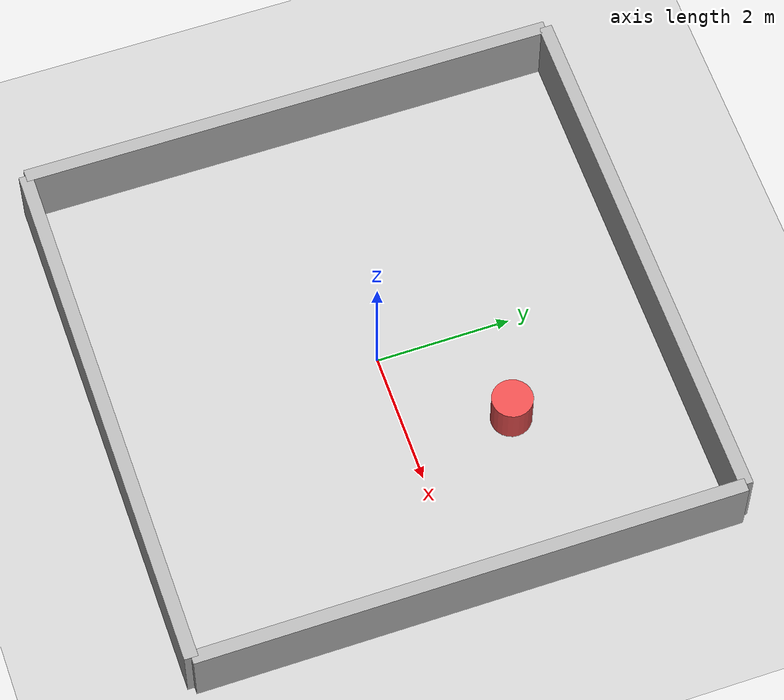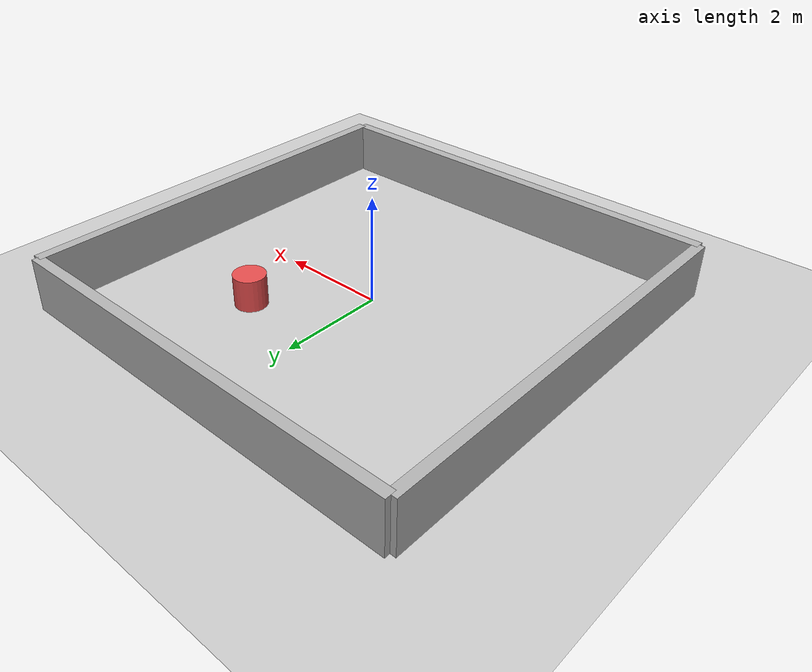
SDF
<?xml version="1.0"?>
<sdf version="1.6">
  <world name="guardian_world">

    <!-- Global lighting -->
    <include>
      <uri>model://sun</uri>
    </include>

    <!-- Ground plane -->
    <include>
      <uri>model://ground_plane</uri>
    </include>

    <!-- Walls -->
    <model name="north_wall">
      <pose>0 4 0.5 0 0 0</pose>
      <link name="link">
        <collision name="collision">
          <geometry><box><size>8 0.2 1</size></box></geometry>
        </collision>
        <visual name="visual">
          <geometry><box><size>8 0.2 1</size></box></geometry>
          <material>
            <ambient>0.5 0.5 0.5 1</ambient>
            <diffuse>0.7 0.7 0.7 1</diffuse>
          </material>
        </visual>
      </link>
    </model>

    <model name="south_wall">
      <pose>0 -4 0.5 0 0 0</pose>
      <link name="link">
        <collision name="collision">
          <geometry><box><size>8 0.2 1</size></box></geometry>
        </collision>
        <visual name="visual">
          <geometry><box><size>8 0.2 1</size></box></geometry>
          <material>
            <ambient>0.5 0.5 0.5 1</ambient>
            <diffuse>0.7 0.7 0.7 1</diffuse>
          </material>
        </visual>
      </link>
    </model>

    <model name="east_wall">
      <pose>4 0 0.5 0 0 0</pose>
      <link name="link">
        <collision name="collision">
          <geometry><box><size>0.2 8 1</size></box></geometry>
        </collision>
        <visual name="visual">
          <geometry><box><size>0.2 8 1</size></box></geometry>
          <material>
            <ambient>0.5 0.5 0.5 1</ambient>
            <diffuse>0.7 0.7 0.7 1</diffuse>
          </material>
        </visual>
      </link>
    </model>

    <model name="west_wall">
      <pose>-4 0 0.5 0 0 0</pose>
      <link name="link">
        <collision name="collision">
          <geometry><box><size>0.2 8 1</size></box></geometry>
        </collision>
        <visual name="visual">
          <geometry><box><size>0.2 8 1</size></box></geometry>
          <material>
            <ambient>0.5 0.5 0.5 1</ambient>
            <diffuse>0.7 0.7 0.7 1</diffuse>
          </material>
        </visual>
      </link>
    </model>

    <model name="red_obstacle">
      <pose>1.5 1.5 0.3 0 0 0</pose>
      <link name="link">
        <collision name="collision">
          <geometry><cylinder><radius>0.3</radius><length>0.6</length></cylinder></geometry>
        </collision>
        <visual name="visual">
          <geometry><cylinder><radius>0.3</radius><length>0.6</length></cylinder></geometry>
          <material>
            <ambient>0.8 0.2 0.2 1</ambient>
            <diffuse>0.9 0.3 0.3 1</diffuse>
          </material>
        </visual>
      </link>
    </model>

    <!-- Physics -->
    <physics type="ode">
      <max_step_size>0.01</max_step_size>
      <real_time_factor>1</real_time_factor>
      <real_time_update_rate>100</real_time_update_rate>
    </physics>

    <!-- GUI camera -->
    <gui fullscreen='0'>
      <camera name='user_camera'>
        <pose>0 0 5 0 1.57 0</pose>
        <view_controller>orbit</view_controller>
      </camera>
    </gui>

  </world>
</sdf>
